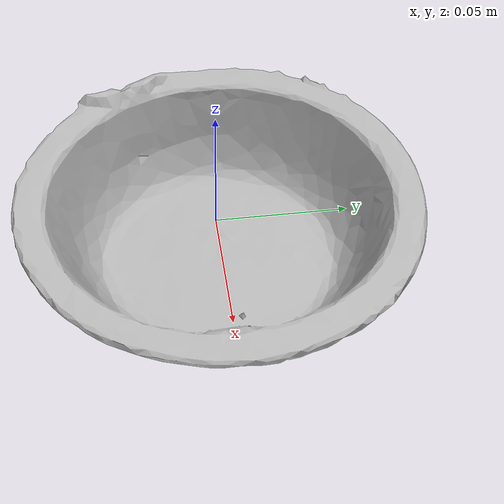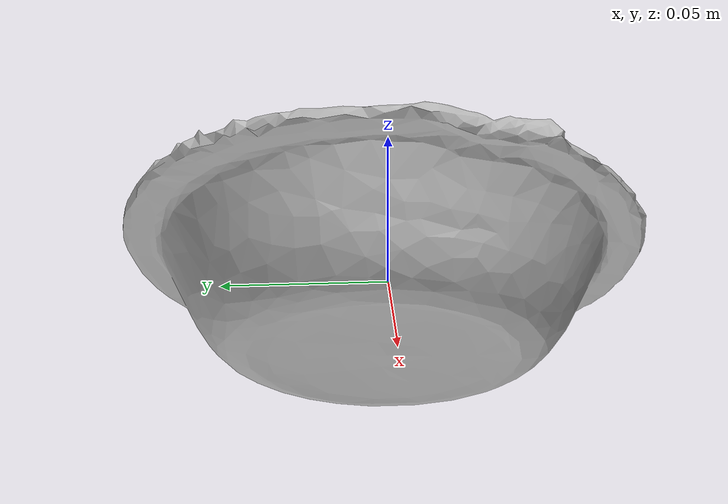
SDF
<?xml version='1.0'?>
<sdf version='1.6'>
	<model name='a_bowlchild'>
		<static>false</static>
		<pose>0 0 0 0 0 0</pose>

		<link name='link'>
			<inertial>
			<mass>0.051</mass>
			<pose>0.00062327 -0.00082628 9.9469e-05 0 0 0</pose>
				<inertia>
					<ixx>1.0588e-06</ixx>
					<ixy>0</ixy>
					<ixz>0</ixz>
					<iyy>6.0902e-07</iyy>
					<iyz>0</iyz>
					<izz>6.8437e-07</izz>
				</inertia>
			</inertial>
			<collision name='collision'>
				<geometry>
					<mesh>
						<uri>model://a_bowlchild/a_bowlchild.dae</uri>
					</mesh>
				</geometry>
				<surface>
					<friction>
						<ode>
							<mu>0.2</mu>
							<mu2>0.2</mu2>
						</ode>
					</friction>
				</surface>
			</collision>
			<visual name='visual'>
				<geometry>
					<mesh>
						<uri>model://a_bowlchild/a_bowlchild.dae</uri>
					</mesh>
				</geometry>
			</visual>
		</link>
	</model>
</sdf>
